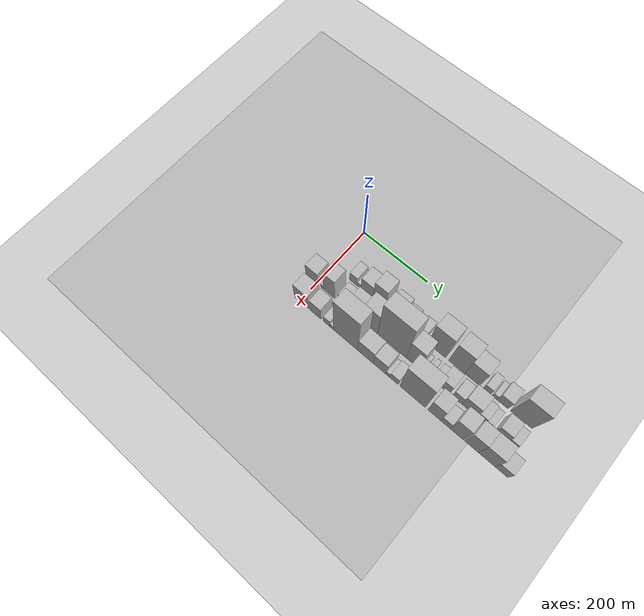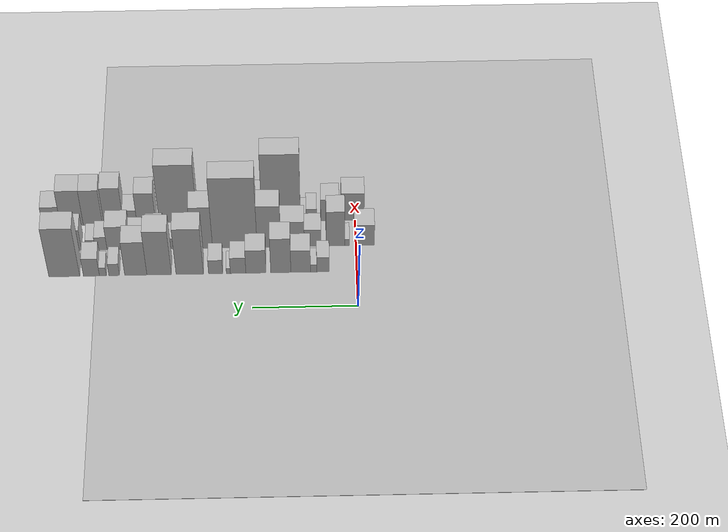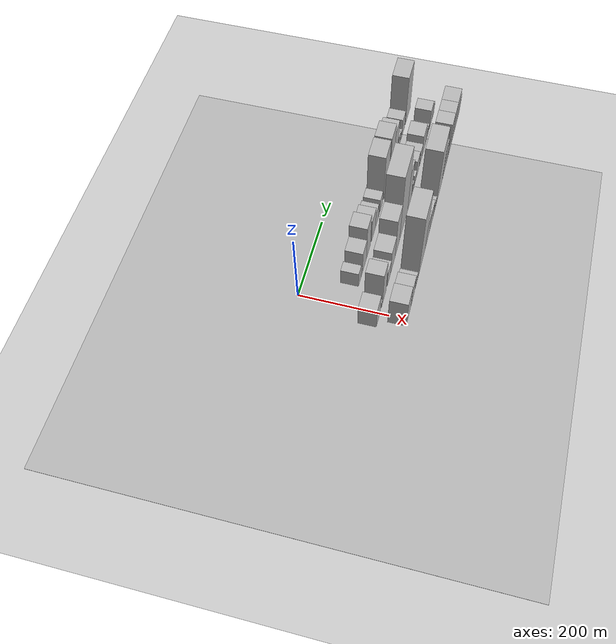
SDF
<sdf version="1.6">
 <world name="default">
  <include><name>ground_plane_1</name><uri>model://HANNAS_ground_plane</uri></include>
  <include>
   <name>ground_plane_2</name>
   <uri>model://HANNAS_ground_plane</uri>
   <pose>100 0 0  0 0 0</pose>
  </include>
  <model name="building_17">
   <static>1</static>
   <pose>100.0000 65.5070 0 0.000000 0.000000 0.000000</pose>
   <link name="link">
    <pose>0 0 24.00 0 0 0</pose>
    <collision name="collision"><geometry><box><size>40.0000 24.0317 48.0000</size></box></geometry></collision>
    <visual name="visual">
     <cast_shadows>0</cast_shadows>
     <geometry><box><size>40.0000 24.0317 48.0000</size></box></geometry>
     <material>
      <script>
       <uri>model://HANNAS_wall/materials/scripts</uri>
       <uri>model://HANNAS_wall/materials/textures</uri>
       <name>vrc/HANNAS_wall</name>
      </script>
     </material>
    </visual>
   </link>
  </model>
  <model name="building_18">
   <static>1</static>
   <pose>100.0000 83.5056 0 0.000000 0.000000 0.000000</pose>
   <link name="link">
    <pose>0 0 12.00 0 0 0</pose>
    <collision name="collision"><geometry><box><size>40.0000 11.9656 24.0000</size></box></geometry></collision>
    <visual name="visual">
     <cast_shadows>0</cast_shadows>
     <geometry><box><size>40.0000 11.9656 24.0000</size></box></geometry>
     <material>
      <script>
       <uri>model://HANNAS_wall/materials/scripts</uri>
       <uri>model://HANNAS_wall/materials/textures</uri>
       <name>vrc/HANNAS_wall</name>
      </script>
     </material>
    </visual>
   </link>
  </model>
  <model name="building_19">
   <static>1</static>
   <pose>100.0000 108.2624 0 0.000000 0.000000 0.000000</pose>
   <link name="link">
    <pose>0 0 36.00 0 0 0</pose>
    <collision name="collision"><geometry><box><size>40.0000 37.5479 72.0000</size></box></geometry></collision>
    <visual name="visual">
     <cast_shadows>0</cast_shadows>
     <geometry><box><size>40.0000 37.5479 72.0000</size></box></geometry>
     <material>
      <script>
       <uri>model://HANNAS_wall/materials/scripts</uri>
       <uri>model://HANNAS_wall/materials/textures</uri>
       <name>vrc/HANNAS_wall</name>
      </script>
     </material>
    </visual>
   </link>
  </model>
  <model name="building_20">
   <static>1</static>
   <pose>100.0000 146.2265 0 0.000000 0.000000 0.000000</pose>
   <link name="link">
    <pose>0 0 55.50 0 0 0</pose>
    <collision name="collision"><geometry><box><size>40.0000 38.3804 111.0000</size></box></geometry></collision>
    <visual name="visual">
     <cast_shadows>0</cast_shadows>
     <geometry><box><size>40.0000 38.3804 111.0000</size></box></geometry>
     <material>
      <script>
       <uri>model://HANNAS_wall/materials/scripts</uri>
       <uri>model://HANNAS_wall/materials/textures</uri>
       <name>vrc/HANNAS_wall</name>
      </script>
     </material>
    </visual>
   </link>
  </model>
  <model name="building_21">
   <static>1</static>
   <pose>100.0000 193.6616 0 0.000000 0.000000 0.000000</pose>
   <link name="link">
    <pose>0 0 37.50 0 0 0</pose>
    <collision name="collision"><geometry><box><size>40.0000 38.4899 75.0000</size></box></geometry></collision>
    <visual name="visual">
     <cast_shadows>0</cast_shadows>
     <geometry><box><size>40.0000 38.4899 75.0000</size></box></geometry>
     <material>
      <script>
       <uri>model://HANNAS_wall/materials/scripts</uri>
       <uri>model://HANNAS_wall/materials/textures</uri>
       <name>vrc/HANNAS_wall</name>
      </script>
     </material>
    </visual>
   </link>
  </model>
  <model name="building_22">
   <static>1</static>
   <pose>100.0000 227.7586 0 0.000000 0.000000 0.000000</pose>
   <link name="link">
    <pose>0 0 25.50 0 0 0</pose>
    <collision name="collision"><geometry><box><size>40.0000 29.7039 51.0000</size></box></geometry></collision>
    <visual name="visual">
     <cast_shadows>0</cast_shadows>
     <geometry><box><size>40.0000 29.7039 51.0000</size></box></geometry>
     <material>
      <script>
       <uri>model://HANNAS_wall/materials/scripts</uri>
       <uri>model://HANNAS_wall/materials/textures</uri>
       <name>vrc/HANNAS_wall</name>
      </script>
     </material>
    </visual>
   </link>
  </model>
  <model name="building_23">
   <static>1</static>
   <pose>100.0000 246.4136 0 0.000000 0.000000 0.000000</pose>
   <link name="link">
    <pose>0 0 9.00 0 0 0</pose>
    <collision name="collision"><geometry><box><size>40.0000 7.6060 18.0000</size></box></geometry></collision>
    <visual name="visual">
     <cast_shadows>0</cast_shadows>
     <geometry><box><size>40.0000 7.6060 18.0000</size></box></geometry>
     <material>
      <script>
       <uri>model://HANNAS_wall/materials/scripts</uri>
       <uri>model://HANNAS_wall/materials/textures</uri>
       <name>vrc/HANNAS_wall</name>
      </script>
     </material>
    </visual>
   </link>
  </model>
  <model name="building_24">
   <static>1</static>
   <pose>100.0000 270.6468 0 0.000000 0.000000 0.000000</pose>
   <link name="link">
    <pose>0 0 22.50 0 0 0</pose>
    <collision name="collision"><geometry><box><size>40.0000 26.8606 45.0000</size></box></geometry></collision>
    <visual name="visual">
     <cast_shadows>0</cast_shadows>
     <geometry><box><size>40.0000 26.8606 45.0000</size></box></geometry>
     <material>
      <script>
       <uri>model://HANNAS_wall/materials/scripts</uri>
       <uri>model://HANNAS_wall/materials/textures</uri>
       <name>vrc/HANNAS_wall</name>
      </script>
     </material>
    </visual>
   </link>
  </model>
  <model name="building_25">
   <static>1</static>
   <pose>100.0000 320.1162 0 0.000000 0.000000 0.000000</pose>
   <link name="link">
    <pose>0 0 73.50 0 0 0</pose>
    <collision name="collision"><geometry><box><size>40.0000 52.0781 147.0000</size></box></geometry></collision>
    <visual name="visual">
     <cast_shadows>0</cast_shadows>
     <geometry><box><size>40.0000 52.0781 147.0000</size></box></geometry>
     <material>
      <script>
       <uri>model://HANNAS_wall/materials/scripts</uri>
       <uri>model://HANNAS_wall/materials/textures</uri>
       <name>vrc/HANNAS_wall</name>
      </script>
     </material>
    </visual>
   </link>
  </model>
  <model name="building_26">
   <static>1</static>
   <pose>100.0000 378.4985 0 0.000000 0.000000 0.000000</pose>
   <link name="link">
    <pose>0 0 70.50 0 0 0</pose>
    <collision name="collision"><geometry><box><size>40.0000 46.6864 141.0000</size></box></geometry></collision>
    <visual name="visual">
     <cast_shadows>0</cast_shadows>
     <geometry><box><size>40.0000 46.6864 141.0000</size></box></geometry>
     <material>
      <script>
       <uri>model://HANNAS_wall/materials/scripts</uri>
       <uri>model://HANNAS_wall/materials/textures</uri>
       <name>vrc/HANNAS_wall</name>
      </script>
     </material>
    </visual>
   </link>
  </model>
  <model name="building_27">
   <static>1</static>
   <pose>100.0000 422.9503 0 0.000000 0.000000 0.000000</pose>
   <link name="link">
    <pose>0 0 54.00 0 0 0</pose>
    <collision name="collision"><geometry><box><size>40.0000 42.2172 108.0000</size></box></geometry></collision>
    <visual name="visual">
     <cast_shadows>0</cast_shadows>
     <geometry><box><size>40.0000 42.2172 108.0000</size></box></geometry>
     <material>
      <script>
       <uri>model://HANNAS_wall/materials/scripts</uri>
       <uri>model://HANNAS_wall/materials/textures</uri>
       <name>vrc/HANNAS_wall</name>
      </script>
     </material>
    </visual>
   </link>
  </model>
  <model name="building_28">
   <static>1</static>
   <pose>100.0000 464.1605 0 0.000000 0.000000 0.000000</pose>
   <link name="link">
    <pose>0 0 19.50 0 0 0</pose>
    <collision name="collision"><geometry><box><size>40.0000 20.2033 39.0000</size></box></geometry></collision>
    <visual name="visual">
     <cast_shadows>0</cast_shadows>
     <geometry><box><size>40.0000 20.2033 39.0000</size></box></geometry>
     <material>
      <script>
       <uri>model://HANNAS_wall/materials/scripts</uri>
       <uri>model://HANNAS_wall/materials/textures</uri>
       <name>vrc/HANNAS_wall</name>
      </script>
     </material>
    </visual>
   </link>
  </model>
  <model name="building_29">
   <static>1</static>
   <pose>100.0000 485.8208 0 0.000000 0.000000 0.000000</pose>
   <link name="link">
    <pose>0 0 13.50 0 0 0</pose>
    <collision name="collision"><geometry><box><size>40.0000 13.1172 27.0000</size></box></geometry></collision>
    <visual name="visual">
     <cast_shadows>0</cast_shadows>
     <geometry><box><size>40.0000 13.1172 27.0000</size></box></geometry>
     <material>
      <script>
       <uri>model://HANNAS_wall/materials/scripts</uri>
       <uri>model://HANNAS_wall/materials/textures</uri>
       <name>vrc/HANNAS_wall</name>
      </script>
     </material>
    </visual>
   </link>
  </model>
  <model name="building_30">
   <static>1</static>
   <pose>100.0000 507.6301 0 0.000000 0.000000 0.000000</pose>
   <link name="link">
    <pose>0 0 28.50 0 0 0</pose>
    <collision name="collision"><geometry><box><size>40.0000 30.5014 57.0000</size></box></geometry></collision>
    <visual name="visual">
     <cast_shadows>0</cast_shadows>
     <geometry><box><size>40.0000 30.5014 57.0000</size></box></geometry>
     <material>
      <script>
       <uri>model://HANNAS_wall/materials/scripts</uri>
       <uri>model://HANNAS_wall/materials/textures</uri>
       <name>vrc/HANNAS_wall</name>
      </script>
     </material>
    </visual>
   </link>
  </model>
  <model name="building_31">
   <static>1</static>
   <pose>100.0000 559.2843 0 0.000000 0.000000 0.000000</pose>
   <link name="link">
    <pose>0 0 78.00 0 0 0</pose>
    <collision name="collision"><geometry><box><size>40.0000 58.8070 156.0000</size></box></geometry></collision>
    <visual name="visual">
     <cast_shadows>0</cast_shadows>
     <geometry><box><size>40.0000 58.8070 156.0000</size></box></geometry>
     <material>
      <script>
       <uri>model://HANNAS_wall/materials/scripts</uri>
       <uri>model://HANNAS_wall/materials/textures</uri>
       <name>vrc/HANNAS_wall</name>
      </script>
     </material>
    </visual>
   </link>
  </model>
  <model name="building_46">
   <static>1</static>
   <pose>160.0000 -15.0528 0 0.000000 0.000000 0.000000</pose>
   <link name="link">
    <pose>0 0 33.00 0 0 0</pose>
    <collision name="collision"><geometry><box><size>40.0000 38.5025 66.0000</size></box></geometry></collision>
    <visual name="visual">
     <cast_shadows>0</cast_shadows>
     <geometry><box><size>40.0000 38.5025 66.0000</size></box></geometry>
     <material>
      <script>
       <uri>model://HANNAS_wall/materials/scripts</uri>
       <uri>model://HANNAS_wall/materials/textures</uri>
       <name>vrc/HANNAS_wall</name>
      </script>
     </material>
    </visual>
   </link>
  </model>
  <model name="building_47">
   <static>1</static>
   <pose>160.0000 17.8857 0 0.000000 0.000000 0.000000</pose>
   <link name="link">
    <pose>0 0 10.50 0 0 0</pose>
    <collision name="collision"><geometry><box><size>40.0000 9.3745 21.0000</size></box></geometry></collision>
    <visual name="visual">
     <cast_shadows>0</cast_shadows>
     <geometry><box><size>40.0000 9.3745 21.0000</size></box></geometry>
     <material>
      <script>
       <uri>model://HANNAS_wall/materials/scripts</uri>
       <uri>model://HANNAS_wall/materials/textures</uri>
       <name>vrc/HANNAS_wall</name>
      </script>
     </material>
    </visual>
   </link>
  </model>
  <model name="building_48">
   <static>1</static>
   <pose>160.0000 40.3775 0 0.000000 0.000000 0.000000</pose>
   <link name="link">
    <pose>0 0 55.50 0 0 0</pose>
    <collision name="collision"><geometry><box><size>40.0000 35.6092 111.0000</size></box></geometry></collision>
    <visual name="visual">
     <cast_shadows>0</cast_shadows>
     <geometry><box><size>40.0000 35.6092 111.0000</size></box></geometry>
     <material>
      <script>
       <uri>model://HANNAS_wall/materials/scripts</uri>
       <uri>model://HANNAS_wall/materials/textures</uri>
       <name>vrc/HANNAS_wall</name>
      </script>
     </material>
    </visual>
   </link>
  </model>
  <model name="building_49">
   <static>1</static>
   <pose>160.0000 84.3303 0 0.000000 0.000000 0.000000</pose>
   <link name="link">
    <pose>0 0 27.00 0 0 0</pose>
    <collision name="collision"><geometry><box><size>40.0000 32.2962 54.0000</size></box></geometry></collision>
    <visual name="visual">
     <cast_shadows>0</cast_shadows>
     <geometry><box><size>40.0000 32.2962 54.0000</size></box></geometry>
     <material>
      <script>
       <uri>model://HANNAS_wall/materials/scripts</uri>
       <uri>model://HANNAS_wall/materials/textures</uri>
       <name>vrc/HANNAS_wall</name>
      </script>
     </material>
    </visual>
   </link>
  </model>
  <model name="building_50">
   <static>1</static>
   <pose>160.0000 123.3205 0 0.000000 0.000000 0.000000</pose>
   <link name="link">
    <pose>0 0 40.50 0 0 0</pose>
    <collision name="collision"><geometry><box><size>40.0000 45.6843 81.0000</size></box></geometry></collision>
    <visual name="visual">
     <cast_shadows>0</cast_shadows>
     <geometry><box><size>40.0000 45.6843 81.0000</size></box></geometry>
     <material>
      <script>
       <uri>model://HANNAS_wall/materials/scripts</uri>
       <uri>model://HANNAS_wall/materials/textures</uri>
       <name>vrc/HANNAS_wall</name>
      </script>
     </material>
    </visual>
   </link>
  </model>
  <model name="building_51">
   <static>1</static>
   <pose>160.0000 168.7962 0 0.000000 0.000000 0.000000</pose>
   <link name="link">
    <pose>0 0 66.00 0 0 0</pose>
    <collision name="collision"><geometry><box><size>40.0000 45.2671 132.0000</size></box></geometry></collision>
    <visual name="visual">
     <cast_shadows>0</cast_shadows>
     <geometry><box><size>40.0000 45.2671 132.0000</size></box></geometry>
     <material>
      <script>
       <uri>model://HANNAS_wall/materials/scripts</uri>
       <uri>model://HANNAS_wall/materials/textures</uri>
       <name>vrc/HANNAS_wall</name>
      </script>
     </material>
    </visual>
   </link>
  </model>
  <model name="building_52">
   <static>1</static>
   <pose>160.0000 234.3059 0 0.000000 0.000000 0.000000</pose>
   <link name="link">
    <pose>0 0 111.00 0 0 0</pose>
    <collision name="collision"><geometry><box><size>40.0000 85.7523 222.0000</size></box></geometry></collision>
    <visual name="visual">
     <cast_shadows>0</cast_shadows>
     <geometry><box><size>40.0000 85.7523 222.0000</size></box></geometry>
     <material>
      <script>
       <uri>model://HANNAS_wall/materials/scripts</uri>
       <uri>model://HANNAS_wall/materials/textures</uri>
       <name>vrc/HANNAS_wall</name>
      </script>
     </material>
    </visual>
   </link>
  </model>
  <model name="building_53">
   <static>1</static>
   <pose>160.0000 297.6123 0 0.000000 0.000000 0.000000</pose>
   <link name="link">
    <pose>0 0 66.00 0 0 0</pose>
    <collision name="collision"><geometry><box><size>40.0000 40.8605 132.0000</size></box></geometry></collision>
    <visual name="visual">
     <cast_shadows>0</cast_shadows>
     <geometry><box><size>40.0000 40.8605 132.0000</size></box></geometry>
     <material>
      <script>
       <uri>model://HANNAS_wall/materials/scripts</uri>
       <uri>model://HANNAS_wall/materials/textures</uri>
       <name>vrc/HANNAS_wall</name>
      </script>
     </material>
    </visual>
   </link>
  </model>
  <model name="building_54">
   <static>1</static>
   <pose>160.0000 322.7274 0 0.000000 0.000000 0.000000</pose>
   <link name="link">
    <pose>0 0 10.50 0 0 0</pose>
    <collision name="collision"><geometry><box><size>40.0000 9.3697 21.0000</size></box></geometry></collision>
    <visual name="visual">
     <cast_shadows>0</cast_shadows>
     <geometry><box><size>40.0000 9.3697 21.0000</size></box></geometry>
     <material>
      <script>
       <uri>model://HANNAS_wall/materials/scripts</uri>
       <uri>model://HANNAS_wall/materials/textures</uri>
       <name>vrc/HANNAS_wall</name>
      </script>
     </material>
    </visual>
   </link>
  </model>
  <model name="building_55">
   <static>1</static>
   <pose>160.0000 340.4483 0 0.000000 0.000000 0.000000</pose>
   <link name="link">
    <pose>0 0 13.50 0 0 0</pose>
    <collision name="collision"><geometry><box><size>40.0000 12.0720 27.0000</size></box></geometry></collision>
    <visual name="visual">
     <cast_shadows>0</cast_shadows>
     <geometry><box><size>40.0000 12.0720 27.0000</size></box></geometry>
     <material>
      <script>
       <uri>model://HANNAS_wall/materials/scripts</uri>
       <uri>model://HANNAS_wall/materials/textures</uri>
       <name>vrc/HANNAS_wall</name>
      </script>
     </material>
    </visual>
   </link>
  </model>
  <model name="building_56">
   <static>1</static>
   <pose>160.0000 362.5901 0 0.000000 0.000000 0.000000</pose>
   <link name="link">
    <pose>0 0 16.50 0 0 0</pose>
    <collision name="collision"><geometry><box><size>40.0000 18.2118 33.0000</size></box></geometry></collision>
    <visual name="visual">
     <cast_shadows>0</cast_shadows>
     <geometry><box><size>40.0000 18.2118 33.0000</size></box></geometry>
     <material>
      <script>
       <uri>model://HANNAS_wall/materials/scripts</uri>
       <uri>model://HANNAS_wall/materials/textures</uri>
       <name>vrc/HANNAS_wall</name>
      </script>
     </material>
    </visual>
   </link>
  </model>
  <model name="building_57">
   <static>1</static>
   <pose>160.0000 387.5303 0 0.000000 0.000000 0.000000</pose>
   <link name="link">
    <pose>0 0 31.50 0 0 0</pose>
    <collision name="collision"><geometry><box><size>40.0000 31.6686 63.0000</size></box></geometry></collision>
    <visual name="visual">
     <cast_shadows>0</cast_shadows>
     <geometry><box><size>40.0000 31.6686 63.0000</size></box></geometry>
     <material>
      <script>
       <uri>model://HANNAS_wall/materials/scripts</uri>
       <uri>model://HANNAS_wall/materials/textures</uri>
       <name>vrc/HANNAS_wall</name>
      </script>
     </material>
    </visual>
   </link>
  </model>
  <model name="building_58">
   <static>1</static>
   <pose>160.0000 424.7740 0 0.000000 0.000000 0.000000</pose>
   <link name="link">
    <pose>0 0 25.50 0 0 0</pose>
    <collision name="collision"><geometry><box><size>40.0000 26.8188 51.0000</size></box></geometry></collision>
    <visual name="visual">
     <cast_shadows>0</cast_shadows>
     <geometry><box><size>40.0000 26.8188 51.0000</size></box></geometry>
     <material>
      <script>
       <uri>model://HANNAS_wall/materials/scripts</uri>
       <uri>model://HANNAS_wall/materials/textures</uri>
       <name>vrc/HANNAS_wall</name>
      </script>
     </material>
    </visual>
   </link>
  </model>
  <model name="building_59">
   <static>1</static>
   <pose>160.0000 459.2394 0 0.000000 0.000000 0.000000</pose>
   <link name="link">
    <pose>0 0 37.50 0 0 0</pose>
    <collision name="collision"><geometry><box><size>40.0000 42.1119 75.0000</size></box></geometry></collision>
    <visual name="visual">
     <cast_shadows>0</cast_shadows>
     <geometry><box><size>40.0000 42.1119 75.0000</size></box></geometry>
     <material>
      <script>
       <uri>model://HANNAS_wall/materials/scripts</uri>
       <uri>model://HANNAS_wall/materials/textures</uri>
       <name>vrc/HANNAS_wall</name>
      </script>
     </material>
    </visual>
   </link>
  </model>
  <model name="building_60">
   <static>1</static>
   <pose>160.0000 491.6080 0 0.000000 0.000000 0.000000</pose>
   <link name="link">
    <pose>0 0 21.00 0 0 0</pose>
    <collision name="collision"><geometry><box><size>40.0000 22.6254 42.0000</size></box></geometry></collision>
    <visual name="visual">
     <cast_shadows>0</cast_shadows>
     <geometry><box><size>40.0000 22.6254 42.0000</size></box></geometry>
     <material>
      <script>
       <uri>model://HANNAS_wall/materials/scripts</uri>
       <uri>model://HANNAS_wall/materials/textures</uri>
       <name>vrc/HANNAS_wall</name>
      </script>
     </material>
    </visual>
   </link>
  </model>
  <model name="building_61">
   <static>1</static>
   <pose>160.0000 511.6646 0 0.000000 0.000000 0.000000</pose>
   <link name="link">
    <pose>0 0 16.50 0 0 0</pose>
    <collision name="collision"><geometry><box><size>40.0000 17.4878 33.0000</size></box></geometry></collision>
    <visual name="visual">
     <cast_shadows>0</cast_shadows>
     <geometry><box><size>40.0000 17.4878 33.0000</size></box></geometry>
     <material>
      <script>
       <uri>model://HANNAS_wall/materials/scripts</uri>
       <uri>model://HANNAS_wall/materials/textures</uri>
       <name>vrc/HANNAS_wall</name>
      </script>
     </material>
    </visual>
   </link>
  </model>
  <model name="building_62">
   <static>1</static>
   <pose>160.0000 546.0676 0 0.000000 0.000000 0.000000</pose>
   <link name="link">
    <pose>0 0 33.00 0 0 0</pose>
    <collision name="collision"><geometry><box><size>40.0000 33.3182 66.0000</size></box></geometry></collision>
    <visual name="visual">
     <cast_shadows>0</cast_shadows>
     <geometry><box><size>40.0000 33.3182 66.0000</size></box></geometry>
     <material>
      <script>
       <uri>model://HANNAS_wall/materials/scripts</uri>
       <uri>model://HANNAS_wall/materials/textures</uri>
       <name>vrc/HANNAS_wall</name>
      </script>
     </material>
    </visual>
   </link>
  </model>
  <model name="building_63">
   <static>1</static>
   <pose>160.0000 574.2059 0 0.000000 0.000000 0.000000</pose>
   <link name="link">
    <pose>0 0 21.00 0 0 0</pose>
    <collision name="collision"><geometry><box><size>40.0000 22.9585 42.0000</size></box></geometry></collision>
    <visual name="visual">
     <cast_shadows>0</cast_shadows>
     <geometry><box><size>40.0000 22.9585 42.0000</size></box></geometry>
     <material>
      <script>
       <uri>model://HANNAS_wall/materials/scripts</uri>
       <uri>model://HANNAS_wall/materials/textures</uri>
       <name>vrc/HANNAS_wall</name>
      </script>
     </material>
    </visual>
   </link>
  </model>
  <model name="building_83">
   <static>1</static>
   <pose>220.0000 5.8321 0 0.000000 0.000000 0.000000</pose>
   <link name="link">
    <pose>0 0 43.50 0 0 0</pose>
    <collision name="collision"><geometry><box><size>40.0000 44.5827 87.0000</size></box></geometry></collision>
    <visual name="visual">
     <cast_shadows>0</cast_shadows>
     <geometry><box><size>40.0000 44.5827 87.0000</size></box></geometry>
     <material>
      <script>
       <uri>model://HANNAS_wall/materials/scripts</uri>
       <uri>model://HANNAS_wall/materials/textures</uri>
       <name>vrc/HANNAS_wall</name>
      </script>
     </material>
    </visual>
   </link>
  </model>
  <model name="building_84">
   <static>1</static>
   <pose>220.0000 49.8996 0 0.000000 0.000000 0.000000</pose>
   <link name="link">
    <pose>0 0 34.50 0 0 0</pose>
    <collision name="collision"><geometry><box><size>40.0000 35.5522 69.0000</size></box></geometry></collision>
    <visual name="visual">
     <cast_shadows>0</cast_shadows>
     <geometry><box><size>40.0000 35.5522 69.0000</size></box></geometry>
     <material>
      <script>
       <uri>model://HANNAS_wall/materials/scripts</uri>
       <uri>model://HANNAS_wall/materials/textures</uri>
       <name>vrc/HANNAS_wall</name>
      </script>
     </material>
    </visual>
   </link>
  </model>
  <model name="building_85">
   <static>1</static>
   <pose>220.0000 85.9749 0 0.000000 0.000000 0.000000</pose>
   <link name="link">
    <pose>0 0 19.50 0 0 0</pose>
    <collision name="collision"><geometry><box><size>40.0000 20.5985 39.0000</size></box></geometry></collision>
    <visual name="visual">
     <cast_shadows>0</cast_shadows>
     <geometry><box><size>40.0000 20.5985 39.0000</size></box></geometry>
     <material>
      <script>
       <uri>model://HANNAS_wall/materials/scripts</uri>
       <uri>model://HANNAS_wall/materials/textures</uri>
       <name>vrc/HANNAS_wall</name>
      </script>
     </material>
    </visual>
   </link>
  </model>
  <model name="building_86">
   <static>1</static>
   <pose>220.0000 101.7922 0 0.000000 0.000000 0.000000</pose>
   <link name="link">
    <pose>0 0 12.00 0 0 0</pose>
    <collision name="collision"><geometry><box><size>40.0000 11.0361 24.0000</size></box></geometry></collision>
    <visual name="visual">
     <cast_shadows>0</cast_shadows>
     <geometry><box><size>40.0000 11.0361 24.0000</size></box></geometry>
     <material>
      <script>
       <uri>model://HANNAS_wall/materials/scripts</uri>
       <uri>model://HANNAS_wall/materials/textures</uri>
       <name>vrc/HANNAS_wall</name>
      </script>
     </material>
    </visual>
   </link>
  </model>
  <model name="building_87">
   <static>1</static>
   <pose>220.0000 144.6482 0 0.000000 0.000000 0.000000</pose>
   <link name="link">
    <pose>0 0 106.50 0 0 0</pose>
    <collision name="collision"><geometry><box><size>40.0000 74.6758 213.0000</size></box></geometry></collision>
    <visual name="visual">
     <cast_shadows>0</cast_shadows>
     <geometry><box><size>40.0000 74.6758 213.0000</size></box></geometry>
     <material>
      <script>
       <uri>model://HANNAS_wall/materials/scripts</uri>
       <uri>model://HANNAS_wall/materials/textures</uri>
       <name>vrc/HANNAS_wall</name>
      </script>
     </material>
    </visual>
   </link>
  </model>
  <model name="building_88">
   <static>1</static>
   <pose>220.0000 205.3014 0 0.000000 0.000000 0.000000</pose>
   <link name="link">
    <pose>0 0 42.00 0 0 0</pose>
    <collision name="collision"><geometry><box><size>40.0000 46.6305 84.0000</size></box></geometry></collision>
    <visual name="visual">
     <cast_shadows>0</cast_shadows>
     <geometry><box><size>40.0000 46.6305 84.0000</size></box></geometry>
     <material>
      <script>
       <uri>model://HANNAS_wall/materials/scripts</uri>
       <uri>model://HANNAS_wall/materials/textures</uri>
       <name>vrc/HANNAS_wall</name>
      </script>
     </material>
    </visual>
   </link>
  </model>
  <model name="building_89">
   <static>1</static>
   <pose>220.0000 247.6222 0 0.000000 0.000000 0.000000</pose>
   <link name="link">
    <pose>0 0 37.50 0 0 0</pose>
    <collision name="collision"><geometry><box><size>40.0000 38.0111 75.0000</size></box></geometry></collision>
    <visual name="visual">
     <cast_shadows>0</cast_shadows>
     <geometry><box><size>40.0000 38.0111 75.0000</size></box></geometry>
     <material>
      <script>
       <uri>model://HANNAS_wall/materials/scripts</uri>
       <uri>model://HANNAS_wall/materials/textures</uri>
       <name>vrc/HANNAS_wall</name>
      </script>
     </material>
    </visual>
   </link>
  </model>
  <model name="building_90">
   <static>1</static>
   <pose>220.0000 272.3555 0 0.000000 0.000000 0.000000</pose>
   <link name="link">
    <pose>0 0 13.50 0 0 0</pose>
    <collision name="collision"><geometry><box><size>40.0000 11.4555 27.0000</size></box></geometry></collision>
    <visual name="visual">
     <cast_shadows>0</cast_shadows>
     <geometry><box><size>40.0000 11.4555 27.0000</size></box></geometry>
     <material>
      <script>
       <uri>model://HANNAS_wall/materials/scripts</uri>
       <uri>model://HANNAS_wall/materials/textures</uri>
       <name>vrc/HANNAS_wall</name>
      </script>
     </material>
    </visual>
   </link>
  </model>
  <model name="building_91">
   <static>1</static>
   <pose>220.0000 290.3901 0 0.000000 0.000000 0.000000</pose>
   <link name="link">
    <pose>0 0 21.00 0 0 0</pose>
    <collision name="collision"><geometry><box><size>40.0000 24.6136 42.0000</size></box></geometry></collision>
    <visual name="visual">
     <cast_shadows>0</cast_shadows>
     <geometry><box><size>40.0000 24.6136 42.0000</size></box></geometry>
     <material>
      <script>
       <uri>model://HANNAS_wall/materials/scripts</uri>
       <uri>model://HANNAS_wall/materials/textures</uri>
       <name>vrc/HANNAS_wall</name>
      </script>
     </material>
    </visual>
   </link>
  </model>
  <model name="building_92">
   <static>1</static>
   <pose>220.0000 344.5311 0 0.000000 0.000000 0.000000</pose>
   <link name="link">
    <pose>0 0 93.00 0 0 0</pose>
    <collision name="collision"><geometry><box><size>40.0000 73.6684 186.0000</size></box></geometry></collision>
    <visual name="visual">
     <cast_shadows>0</cast_shadows>
     <geometry><box><size>40.0000 73.6684 186.0000</size></box></geometry>
     <material>
      <script>
       <uri>model://HANNAS_wall/materials/scripts</uri>
       <uri>model://HANNAS_wall/materials/textures</uri>
       <name>vrc/HANNAS_wall</name>
      </script>
     </material>
    </visual>
   </link>
  </model>
  <model name="building_93">
   <static>1</static>
   <pose>220.0000 406.5760 0 0.000000 0.000000 0.000000</pose>
   <link name="link">
    <pose>0 0 49.50 0 0 0</pose>
    <collision name="collision"><geometry><box><size>40.0000 36.4213 99.0000</size></box></geometry></collision>
    <visual name="visual">
     <cast_shadows>0</cast_shadows>
     <geometry><box><size>40.0000 36.4213 99.0000</size></box></geometry>
     <material>
      <script>
       <uri>model://HANNAS_wall/materials/scripts</uri>
       <uri>model://HANNAS_wall/materials/textures</uri>
       <name>vrc/HANNAS_wall</name>
      </script>
     </material>
    </visual>
   </link>
  </model>
  <model name="building_94">
   <static>1</static>
   <pose>220.0000 437.9035 0 0.000000 0.000000 0.000000</pose>
   <link name="link">
    <pose>0 0 22.50 0 0 0</pose>
    <collision name="collision"><geometry><box><size>40.0000 26.2336 45.0000</size></box></geometry></collision>
    <visual name="visual">
     <cast_shadows>0</cast_shadows>
     <geometry><box><size>40.0000 26.2336 45.0000</size></box></geometry>
     <material>
      <script>
       <uri>model://HANNAS_wall/materials/scripts</uri>
       <uri>model://HANNAS_wall/materials/textures</uri>
       <name>vrc/HANNAS_wall</name>
      </script>
     </material>
    </visual>
   </link>
  </model>
  <model name="building_95">
   <static>1</static>
   <pose>220.0000 469.9262 0 0.000000 0.000000 0.000000</pose>
   <link name="link">
    <pose>0 0 58.50 0 0 0</pose>
    <collision name="collision"><geometry><box><size>40.0000 37.8118 117.0000</size></box></geometry></collision>
    <visual name="visual">
     <cast_shadows>0</cast_shadows>
     <geometry><box><size>40.0000 37.8118 117.0000</size></box></geometry>
     <material>
      <script>
       <uri>model://HANNAS_wall/materials/scripts</uri>
       <uri>model://HANNAS_wall/materials/textures</uri>
       <name>vrc/HANNAS_wall</name>
      </script>
     </material>
    </visual>
   </link>
  </model>
  <model name="building_96">
   <static>1</static>
   <pose>220.0000 510.4951 0 0.000000 0.000000 0.000000</pose>
   <link name="link">
    <pose>0 0 55.50 0 0 0</pose>
    <collision name="collision"><geometry><box><size>40.0000 37.3260 111.0000</size></box></geometry></collision>
    <visual name="visual">
     <cast_shadows>0</cast_shadows>
     <geometry><box><size>40.0000 37.3260 111.0000</size></box></geometry>
     <material>
      <script>
       <uri>model://HANNAS_wall/materials/scripts</uri>
       <uri>model://HANNAS_wall/materials/textures</uri>
       <name>vrc/HANNAS_wall</name>
      </script>
     </material>
    </visual>
   </link>
  </model>
  <model name="building_97">
   <static>1</static>
   <pose>220.0000 551.3099 0 0.000000 0.000000 0.000000</pose>
   <link name="link">
    <pose>0 0 55.50 0 0 0</pose>
    <collision name="collision"><geometry><box><size>40.0000 44.3037 111.0000</size></box></geometry></collision>
    <visual name="visual">
     <cast_shadows>0</cast_shadows>
     <geometry><box><size>40.0000 44.3037 111.0000</size></box></geometry>
     <material>
      <script>
       <uri>model://HANNAS_wall/materials/scripts</uri>
       <uri>model://HANNAS_wall/materials/textures</uri>
       <name>vrc/HANNAS_wall</name>
      </script>
     </material>
    </visual>
   </link>
  </model>
  <model name="building_98">
   <static>1</static>
   <pose>220.0000 590.7182 0 0.000000 0.000000 0.000000</pose>
   <link name="link">
    <pose>0 0 30.00 0 0 0</pose>
    <collision name="collision"><geometry><box><size>40.0000 34.5130 60.0000</size></box></geometry></collision>
    <visual name="visual">
     <cast_shadows>0</cast_shadows>
     <geometry><box><size>40.0000 34.5130 60.0000</size></box></geometry>
     <material>
      <script>
       <uri>model://HANNAS_wall/materials/scripts</uri>
       <uri>model://HANNAS_wall/materials/textures</uri>
       <name>vrc/HANNAS_wall</name>
      </script>
     </material>
    </visual>
   </link>
  </model>
 </world>
</sdf>
